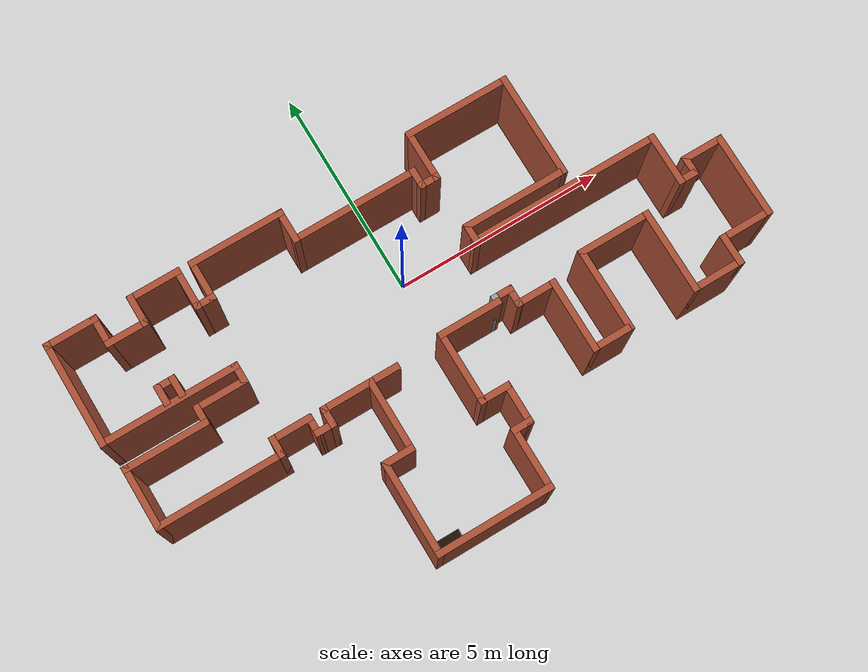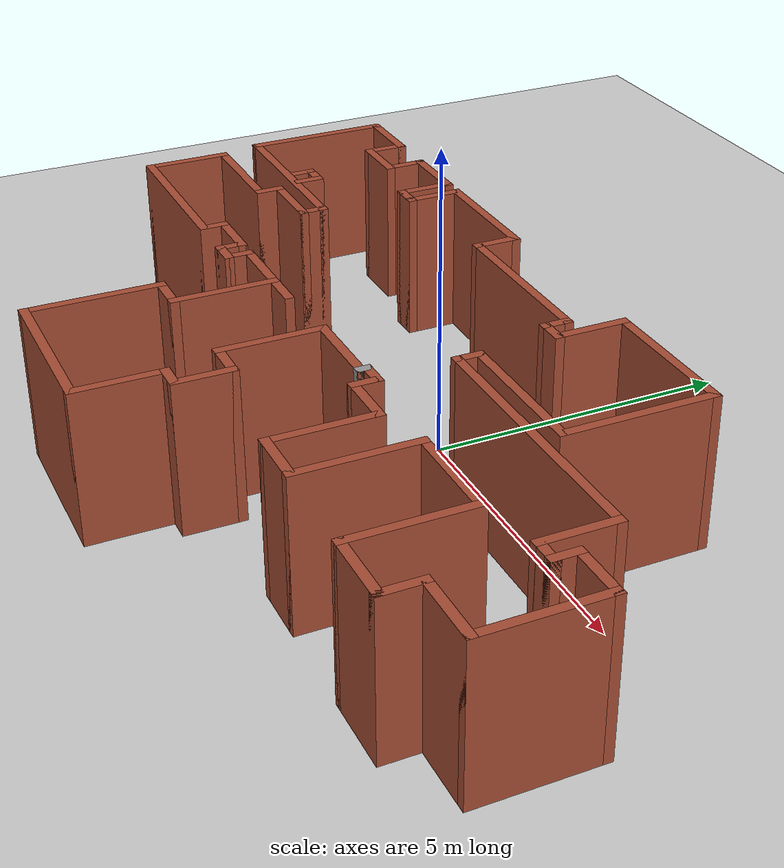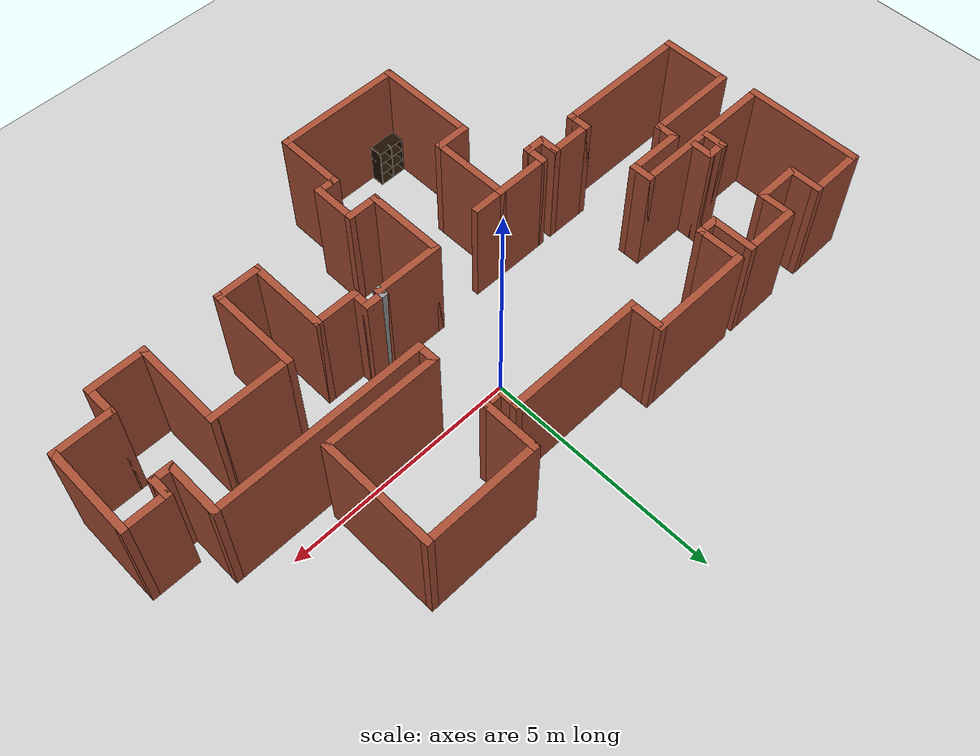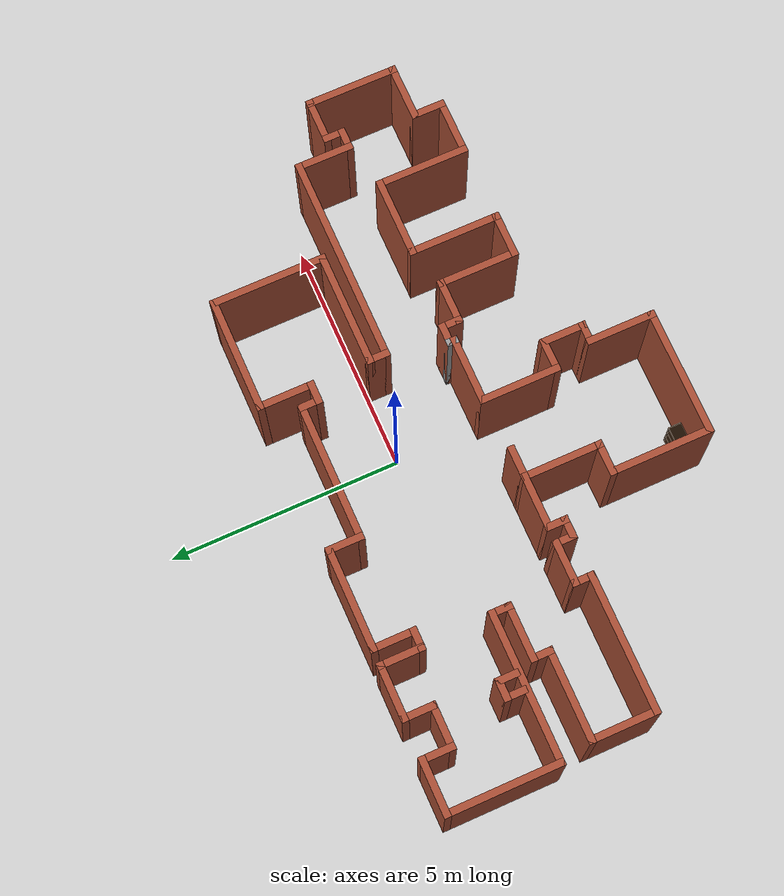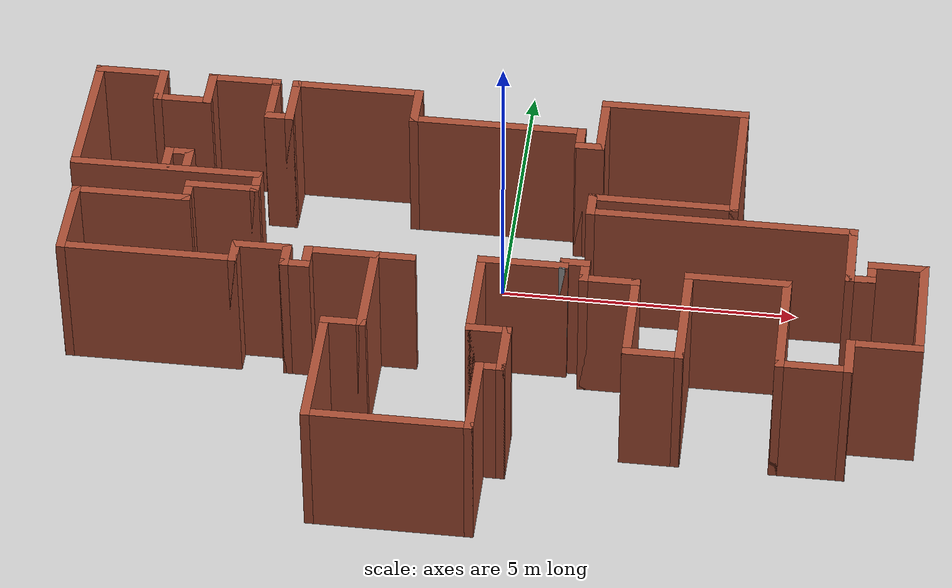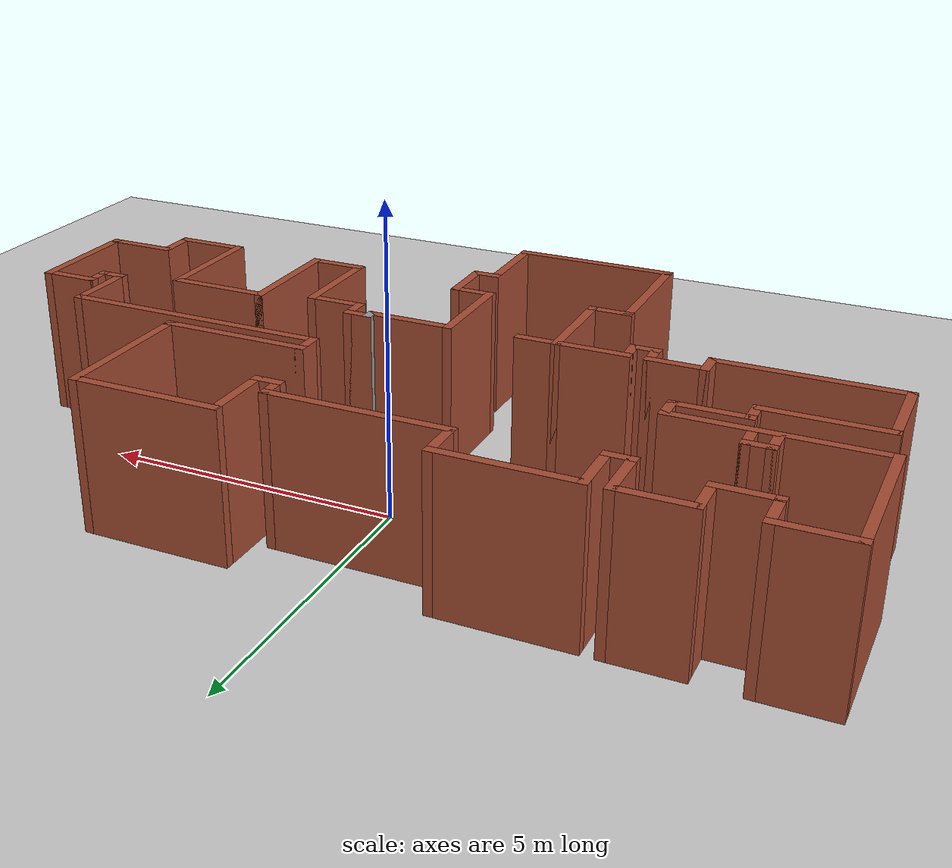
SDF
<sdf version="1.6">
 <world name="default">
  <model name="ground_plane">
   <static>1</static>
   <link name="link">
    <collision name="collision">
     <geometry><plane><normal>0 0 1</normal><size>100 100</size></plane></geometry>
     <surface>
      <contact><collide_bitmask>65535</collide_bitmask></contact>
      <friction><ode><mu>100</mu><mu2>50</mu2></ode></friction>
     </surface>
    </collision>
    <visual name="visual">
     <cast_shadows>0</cast_shadows>
     <geometry><plane><normal>0 0 1</normal><size>100 100</size></plane></geometry>
     <material>
      <script><uri>file://media/materials/scripts/gazebo.material</uri><name>Gazebo/Grey</name></script>
     </material>
    </visual>
   </link>
  </model>
  <model name="map_82">
   <pose>-0.062796 -1.68323 0 0 -0 0</pose>
   <link name="Wall_10">
    <collision name="Wall_10_Collision">
     <geometry><box><size>1.25 0.15 2.5</size></box></geometry>
     <pose>0 0 1.25 0 -0 0</pose>
    </collision>
    <visual name="Wall_10_Visual">
     <pose>0 0 1.25 0 -0 0</pose>
     <geometry><box><size>1.25 0.15 2.5</size></box></geometry>
     <material>
      <script><uri>file://media/materials/scripts/gazebo.material</uri><name>Gazebo/Bricks</name></script>
      <ambient>1 1 1 1</ambient>
     </material>
     <meta><layer>0</layer></meta>
    </visual>
    <pose>-4.625 3.825 0 0 -0 3.14159</pose>
   </link>
   <link name="Wall_11">
    <collision name="Wall_11_Collision">
     <geometry><box><size>0.75 0.15 2.5</size></box></geometry>
     <pose>0 0 1.25 0 -0 0</pose>
    </collision>
    <visual name="Wall_11_Visual">
     <pose>0 0 1.25 0 -0 0</pose>
     <geometry><box><size>0.75 0.15 2.5</size></box></geometry>
     <material>
      <script><uri>file://media/materials/scripts/gazebo.material</uri><name>Gazebo/Bricks</name></script>
      <ambient>1 1 1 1</ambient>
     </material>
     <meta><layer>0</layer></meta>
    </visual>
    <pose>-5.175 3.525 0 0 -0 -1.5708</pose>
   </link>
   <link name="Wall_12">
    <collision name="Wall_12_Collision">
     <geometry><box><size>1 0.15 2.5</size></box></geometry>
     <pose>0 0 1.25 0 -0 0</pose>
    </collision>
    <visual name="Wall_12_Visual">
     <pose>0 0 1.25 0 -0 0</pose>
     <geometry><box><size>1 0.15 2.5</size></box></geometry>
     <material>
      <script><uri>file://media/materials/scripts/gazebo.material</uri><name>Gazebo/Bricks</name></script>
      <ambient>1 1 1 1</ambient>
     </material>
     <meta><layer>0</layer></meta>
    </visual>
    <pose>-5.6 3.225 0 0 -0 3.14159</pose>
   </link>
   <link name="Wall_13">
    <collision name="Wall_13_Collision">
     <geometry><box><size>0.75 0.15 2.5</size></box></geometry>
     <pose>0 0 1.25 0 -0 0</pose>
    </collision>
    <visual name="Wall_13_Visual">
     <pose>0 0 1.25 0 -0 0</pose>
     <geometry><box><size>0.75 0.15 2.5</size></box></geometry>
     <material>
      <script><uri>file://media/materials/scripts/gazebo.material</uri><name>Gazebo/Bricks</name></script>
      <ambient>1 1 1 1</ambient>
     </material>
     <meta><layer>0</layer></meta>
    </visual>
    <pose>-6.025 3.525 0 0 -0 1.5708</pose>
   </link>
   <link name="Wall_14">
    <collision name="Wall_14_Collision">
     <geometry><box><size>1.25 0.15 2.5</size></box></geometry>
     <pose>0 0 1.25 0 -0 0</pose>
    </collision>
    <visual name="Wall_14_Visual">
     <pose>0 0 1.25 0 -0 0</pose>
     <geometry><box><size>1.25 0.15 2.5</size></box></geometry>
     <material>
      <script><uri>file://media/materials/scripts/gazebo.material</uri><name>Gazebo/Bricks</name></script>
      <ambient>1 1 1 1</ambient>
     </material>
     <meta><layer>0</layer></meta>
    </visual>
    <pose>-6.575 3.825 0 0 -0 3.14159</pose>
   </link>
   <link name="Wall_17">
    <collision name="Wall_17_Collision">
     <geometry><box><size>2.5 0.15 2.5</size></box></geometry>
     <pose>0 0 1.25 0 -0 0</pose>
    </collision>
    <visual name="Wall_17_Visual">
     <pose>0 0 1.25 0 -0 0</pose>
     <geometry><box><size>2.5 0.15 2.5</size></box></geometry>
     <material>
      <script><uri>file://media/materials/scripts/gazebo.material</uri><name>Gazebo/Bricks</name></script>
      <ambient>1 1 1 1</ambient>
     </material>
     <meta><layer>0</layer></meta>
    </visual>
    <pose>-7.125 2.65 0 0 -0 -1.5708</pose>
   </link>
   <link name="Wall_18">
    <collision name="Wall_18_Collision">
     <geometry><box><size>3.25 0.15 2.5</size></box></geometry>
     <pose>0 0 1.25 0 -0 0</pose>
    </collision>
    <visual name="Wall_18_Visual">
     <pose>0 0 1.25 0 -0 0</pose>
     <geometry><box><size>3.25 0.15 2.5</size></box></geometry>
     <material>
      <script><uri>file://media/materials/scripts/gazebo.material</uri><name>Gazebo/Bricks</name></script>
      <ambient>1 1 1 1</ambient>
     </material>
     <meta><layer>0</layer></meta>
    </visual>
    <pose>-5.575 1.475 0 0 -0 0</pose>
   </link>
   <link name="Wall_19">
    <collision name="Wall_19_Collision">
     <geometry><box><size>0.5 0.15 2.5</size></box></geometry>
     <pose>0 0 1.25 0 -0 0</pose>
    </collision>
    <visual name="Wall_19_Visual">
     <pose>0 0 1.25 0 -0 0</pose>
     <geometry><box><size>0.5 0.15 2.5</size></box></geometry>
     <material>
      <script><uri>file://media/materials/scripts/gazebo.material</uri><name>Gazebo/Bricks</name></script>
      <ambient>1 1 1 1</ambient>
     </material>
     <meta><layer>0</layer></meta>
    </visual>
    <pose>-4.025 1.3 0 0 -0 -1.5708</pose>
   </link>
   <link name="Wall_2">
    <collision name="Wall_2_Collision">
     <geometry><box><size>2.25 0.15 2.5</size></box></geometry>
     <pose>0 0 1.25 0 -0 0</pose>
    </collision>
    <visual name="Wall_2_Visual">
     <pose>0 0 1.25 0 -0 0</pose>
     <geometry><box><size>2.25 0.15 2.5</size></box></geometry>
     <material>
      <script><uri>file://media/materials/scripts/gazebo.material</uri><name>Gazebo/Bricks</name></script>
      <ambient>1 1 1 1</ambient>
     </material>
     <meta><layer>0</layer></meta>
    </visual>
    <pose>-2.675 3.825 0 0 -0 3.14159</pose>
   </link>
   <link name="Wall_23">
    <collision name="Wall_23_Collision">
     <geometry><box><size>1.25 0.15 2.5</size></box></geometry>
     <pose>0 0 1.25 0 -0 0</pose>
    </collision>
    <visual name="Wall_23_Visual">
     <pose>0 0 1.25 0 -0 0</pose>
     <geometry><box><size>1.25 0.15 2.5</size></box></geometry>
     <material>
      <script><uri>file://media/materials/scripts/gazebo.material</uri><name>Gazebo/Bricks</name></script>
      <ambient>1 1 1 1</ambient>
     </material>
     <meta><layer>0</layer></meta>
    </visual>
    <pose>-4.575 1.125 0 0 -0 3.14159</pose>
   </link>
   <link name="Wall_24">
    <collision name="Wall_24_Collision">
     <geometry><box><size>0.5 0.15 2.5</size></box></geometry>
     <pose>0 0 1.25 0 -0 0</pose>
    </collision>
    <visual name="Wall_24_Visual">
     <pose>0 0 1.25 0 -0 0</pose>
     <geometry><box><size>0.5 0.15 2.5</size></box></geometry>
     <material>
      <script><uri>file://media/materials/scripts/gazebo.material</uri><name>Gazebo/Bricks</name></script>
      <ambient>1 1 1 1</ambient>
     </material>
     <meta><layer>0</layer></meta>
    </visual>
    <pose>-5.125 0.95 0 0 -0 -1.5708</pose>
   </link>
   <link name="Wall_25">
    <collision name="Wall_25_Collision">
     <geometry><box><size>2 0.15 2.5</size></box></geometry>
     <pose>0 0 1.25 0 -0 0</pose>
    </collision>
    <visual name="Wall_25_Visual">
     <pose>0 0 1.25 0 -0 0</pose>
     <geometry><box><size>2 0.15 2.5</size></box></geometry>
     <material>
      <script><uri>file://media/materials/scripts/gazebo.material</uri><name>Gazebo/Bricks</name></script>
      <ambient>1 1 1 1</ambient>
     </material>
     <meta><layer>0</layer></meta>
    </visual>
    <pose>-6.05 0.775 0 0 -0 3.14159</pose>
   </link>
   <link name="Wall_26">
    <collision name="Wall_26_Collision">
     <geometry><box><size>1.5 0.15 2.5</size></box></geometry>
     <pose>0 0 1.25 0 -0 0</pose>
    </collision>
    <visual name="Wall_26_Visual">
     <pose>0 0 1.25 0 -0 0</pose>
     <geometry><box><size>1.5 0.15 2.5</size></box></geometry>
     <material>
      <script><uri>file://media/materials/scripts/gazebo.material</uri><name>Gazebo/Bricks</name></script>
      <ambient>1 1 1 1</ambient>
     </material>
     <meta><layer>0</layer></meta>
    </visual>
    <pose>-6.975 0.1 0 0 -0 -1.5708</pose>
   </link>
   <link name="Wall_27">
    <collision name="Wall_27_Collision">
     <geometry><box><size>3 0.15 2.5</size></box></geometry>
     <pose>0 0 1.25 0 -0 0</pose>
    </collision>
    <visual name="Wall_27_Visual">
     <pose>0 0 1.25 0 -0 0</pose>
     <geometry><box><size>3 0.15 2.5</size></box></geometry>
     <material>
      <script><uri>file://media/materials/scripts/gazebo.material</uri><name>Gazebo/Bricks</name></script>
      <ambient>1 1 1 1</ambient>
     </material>
     <meta><layer>0</layer></meta>
    </visual>
    <pose>-5.55 -0.575 0 0 -0 0</pose>
   </link>
   <link name="Wall_28">
    <collision name="Wall_28_Collision">
     <geometry><box><size>0.5 0.15 2.5</size></box></geometry>
     <pose>0 0 1.25 0 -0 0</pose>
    </collision>
    <visual name="Wall_28_Visual">
     <pose>0 0 1.25 0 -0 0</pose>
     <geometry><box><size>0.5 0.15 2.5</size></box></geometry>
     <material>
      <script><uri>file://media/materials/scripts/gazebo.material</uri><name>Gazebo/Bricks</name></script>
      <ambient>1 1 1 1</ambient>
     </material>
     <meta><layer>0</layer></meta>
    </visual>
    <pose>-4.125 -0.4 0 0 -0 1.5708</pose>
   </link>
   <link name="Wall_29">
    <collision name="Wall_29_Collision">
     <geometry><box><size>1 0.15 2.5</size></box></geometry>
     <pose>0 0 1.25 0 -0 0</pose>
    </collision>
    <visual name="Wall_29_Visual">
     <pose>0 0 1.25 0 -0 0</pose>
     <geometry><box><size>1 0.15 2.5</size></box></geometry>
     <material>
      <script><uri>file://media/materials/scripts/gazebo.material</uri><name>Gazebo/Bricks</name></script>
      <ambient>1 1 1 1</ambient>
     </material>
     <meta><layer>0</layer></meta>
    </visual>
    <pose>-3.7 -0.225 0 0 -0 0</pose>
   </link>
   <link name="Wall_30">
    <collision name="Wall_30_Collision">
     <geometry><box><size>0.5 0.15 2.5</size></box></geometry>
     <pose>0 0 1.25 0 -0 0</pose>
    </collision>
    <visual name="Wall_30_Visual">
     <pose>0 0 1.25 0 -0 0</pose>
     <geometry><box><size>0.5 0.15 2.5</size></box></geometry>
     <material>
      <script><uri>file://media/materials/scripts/gazebo.material</uri><name>Gazebo/Bricks</name></script>
      <ambient>1 1 1 1</ambient>
     </material>
     <meta><layer>0</layer></meta>
    </visual>
    <pose>-3.275 -0.4 0 0 -0 -1.5708</pose>
   </link>
   <link name="Wall_31">
    <collision name="Wall_31_Collision">
     <geometry><box><size>0.5 0.15 2.5</size></box></geometry>
     <pose>0 0 1.25 0 -0 0</pose>
    </collision>
    <visual name="Wall_31_Visual">
     <pose>0 0 1.25 0 -0 0</pose>
     <geometry><box><size>0.5 0.15 2.5</size></box></geometry>
     <material>
      <script><uri>file://media/materials/scripts/gazebo.material</uri><name>Gazebo/Bricks</name></script>
      <ambient>1 1 1 1</ambient>
     </material>
     <meta><layer>0</layer></meta>
    </visual>
    <pose>-3.1 -0.575 0 0 -0 0</pose>
   </link>
   <link name="Wall_32">
    <collision name="Wall_32_Collision">
     <geometry><box><size>0.5 0.15 2.5</size></box></geometry>
     <pose>0 0 1.25 0 -0 0</pose>
    </collision>
    <visual name="Wall_32_Visual">
     <pose>0 0 1.25 0 -0 0</pose>
     <geometry><box><size>0.5 0.15 2.5</size></box></geometry>
     <material>
      <script><uri>file://media/materials/scripts/gazebo.material</uri><name>Gazebo/Bricks</name></script>
      <ambient>1 1 1 1</ambient>
     </material>
     <meta><layer>0</layer></meta>
    </visual>
    <pose>-2.925 -0.4 0 0 -0 1.5708</pose>
   </link>
   <link name="Wall_33">
    <collision name="Wall_33_Collision">
     <geometry><box><size>1.25 0.15 2.5</size></box></geometry>
     <pose>0 0 1.25 0 -0 0</pose>
    </collision>
    <visual name="Wall_33_Visual">
     <pose>0 0 1.25 0 -0 0</pose>
     <geometry><box><size>1.25 0.15 2.5</size></box></geometry>
     <material>
      <script><uri>file://media/materials/scripts/gazebo.material</uri><name>Gazebo/Bricks</name></script>
      <ambient>1 1 1 1</ambient>
     </material>
     <meta><layer>0</layer></meta>
    </visual>
    <pose>-2.375 -0.225 0 0 -0 0</pose>
   </link>
   <link name="Wall_34">
    <collision name="Wall_34_Collision">
     <geometry><box><size>1.75 0.15 2.5</size></box></geometry>
     <pose>0 0 1.25 0 -0 0</pose>
    </collision>
    <visual name="Wall_34_Visual">
     <pose>0 0 1.25 0 -0 0</pose>
     <geometry><box><size>1.75 0.15 2.5</size></box></geometry>
     <material>
      <script><uri>file://media/materials/scripts/gazebo.material</uri><name>Gazebo/Bricks</name></script>
      <ambient>1 1 1 1</ambient>
     </material>
     <meta><layer>0</layer></meta>
    </visual>
    <pose>-1.825 -1.025 0 0 -0 -1.5708</pose>
   </link>
   <link name="Wall_35">
    <collision name="Wall_35_Collision">
     <geometry><box><size>0.75 0.15 2.5</size></box></geometry>
     <pose>0 0 1.25 0 -0 0</pose>
    </collision>
    <visual name="Wall_35_Visual">
     <pose>0 0 1.25 0 -0 0</pose>
     <geometry><box><size>0.75 0.15 2.5</size></box></geometry>
     <material>
      <script><uri>file://media/materials/scripts/gazebo.material</uri><name>Gazebo/Bricks</name></script>
      <ambient>1 1 1 1</ambient>
     </material>
     <meta><layer>0</layer></meta>
    </visual>
    <pose>-2.125 -1.825 0 0 -0 3.14159</pose>
   </link>
   <link name="Wall_36">
    <collision name="Wall_36_Collision">
     <geometry><box><size>2.25 0.15 2.5</size></box></geometry>
     <pose>0 0 1.25 0 -0 0</pose>
    </collision>
    <visual name="Wall_36_Visual">
     <pose>0 0 1.25 0 -0 0</pose>
     <geometry><box><size>2.25 0.15 2.5</size></box></geometry>
     <material>
      <script><uri>file://media/materials/scripts/gazebo.material</uri><name>Gazebo/Bricks</name></script>
      <ambient>1 1 1 1</ambient>
     </material>
     <meta><layer>0</layer></meta>
    </visual>
    <pose>-2.425 -2.875 0 0 -0 -1.5708</pose>
   </link>
   <link name="Wall_37">
    <collision name="Wall_37_Collision">
     <geometry><box><size>2.75 0.15 2.5</size></box></geometry>
     <pose>0 0 1.25 0 -0 0</pose>
    </collision>
    <visual name="Wall_37_Visual">
     <pose>0 0 1.25 0 -0 0</pose>
     <geometry><box><size>2.75 0.15 2.5</size></box></geometry>
     <material>
      <script><uri>file://media/materials/scripts/gazebo.material</uri><name>Gazebo/Bricks</name></script>
      <ambient>1 1 1 1</ambient>
     </material>
     <meta><layer>0</layer></meta>
    </visual>
    <pose>-1.125 -3.925 0 0 -0 0</pose>
   </link>
   <link name="Wall_38">
    <collision name="Wall_38_Collision">
     <geometry><box><size>1.5 0.15 2.5</size></box></geometry>
     <pose>0 0 1.25 0 -0 0</pose>
    </collision>
    <visual name="Wall_38_Visual">
     <pose>0 0 1.25 0 -0 0</pose>
     <geometry><box><size>1.5 0.15 2.5</size></box></geometry>
     <material>
      <script><uri>file://media/materials/scripts/gazebo.material</uri><name>Gazebo/Bricks</name></script>
      <ambient>1 1 1 1</ambient>
     </material>
     <meta><layer>0</layer></meta>
    </visual>
    <pose>0.175 -3.25 0 0 -0 1.5708</pose>
   </link>
   <link name="Wall_39">
    <collision name="Wall_39_Collision">
     <geometry><box><size>0.5 0.15 2.5</size></box></geometry>
     <pose>0 0 1.25 0 -0 0</pose>
    </collision>
    <visual name="Wall_39_Visual">
     <pose>0 0 1.25 0 -0 0</pose>
     <geometry><box><size>0.5 0.15 2.5</size></box></geometry>
     <material>
      <script><uri>file://media/materials/scripts/gazebo.material</uri><name>Gazebo/Bricks</name></script>
      <ambient>1 1 1 1</ambient>
     </material>
     <meta><layer>0</layer></meta>
    </visual>
    <pose>0.35 -2.575 0 0 -0 0</pose>
   </link>
   <link name="Wall_42">
    <collision name="Wall_42_Collision">
     <geometry><box><size>1 0.15 2.5</size></box></geometry>
     <pose>0 0 1.25 0 -0 0</pose>
    </collision>
    <visual name="Wall_42_Visual">
     <pose>0 0 1.25 0 -0 0</pose>
     <geometry><box><size>1 0.15 2.5</size></box></geometry>
     <material>
      <script><uri>file://media/materials/scripts/gazebo.material</uri><name>Gazebo/Bricks</name></script>
      <ambient>1 1 1 1</ambient>
     </material>
     <meta><layer>0</layer></meta>
    </visual>
    <pose>0.525 -2.15 0 0 -0 1.5708</pose>
   </link>
   <link name="Wall_43">
    <collision name="Wall_43_Collision">
     <geometry><box><size>0.75 0.15 2.5</size></box></geometry>
     <pose>0 0 1.25 0 -0 0</pose>
    </collision>
    <visual name="Wall_43_Visual">
     <pose>0 0 1.25 0 -0 0</pose>
     <geometry><box><size>0.75 0.15 2.5</size></box></geometry>
     <material>
      <script><uri>file://media/materials/scripts/gazebo.material</uri><name>Gazebo/Bricks</name></script>
      <ambient>1 1 1 1</ambient>
     </material>
     <meta><layer>0</layer></meta>
    </visual>
    <pose>0.225 -1.725 0 0 -0 3.14159</pose>
   </link>
   <link name="Wall_44">
    <collision name="Wall_44_Collision">
     <geometry><box><size>1.75 0.15 2.5</size></box></geometry>
     <pose>0 0 1.25 0 -0 0</pose>
    </collision>
    <visual name="Wall_44_Visual">
     <pose>0 0 1.25 0 -0 0</pose>
     <geometry><box><size>1.75 0.15 2.5</size></box></geometry>
     <material>
      <script><uri>file://media/materials/scripts/gazebo.material</uri><name>Gazebo/Bricks</name></script>
      <ambient>1 1 1 1</ambient>
     </material>
     <meta><layer>0</layer></meta>
    </visual>
    <pose>-0.075 -0.925 0 0 -0 1.5708</pose>
   </link>
   <link name="Wall_45">
    <collision name="Wall_45_Collision">
     <geometry><box><size>1.5 0.15 2.5</size></box></geometry>
     <pose>0 0 1.25 0 -0 0</pose>
    </collision>
    <visual name="Wall_45_Visual">
     <pose>0 0 1.25 0 -0 0</pose>
     <geometry><box><size>1.5 0.15 2.5</size></box></geometry>
     <material>
      <script><uri>file://media/materials/scripts/gazebo.material</uri><name>Gazebo/Bricks</name></script>
      <ambient>1 1 1 1</ambient>
     </material>
     <meta><layer>0</layer></meta>
    </visual>
    <pose>0.6 -0.125 0 0 -0 0</pose>
   </link>
   <link name="Wall_46">
    <collision name="Wall_46_Collision">
     <geometry><box><size>0.25 0.15 2.5</size></box></geometry>
     <pose>0 0 1.25 0 -0 0</pose>
    </collision>
    <visual name="Wall_46_Visual">
     <pose>0 0 1.25 0 -0 0</pose>
     <geometry><box><size>0.25 0.15 2.5</size></box></geometry>
     <material>
      <script><uri>file://media/materials/scripts/gazebo.material</uri><name>Gazebo/Grey</name></script>
      <ambient>1 1 1 1</ambient>
     </material>
     <meta><layer>0</layer></meta>
    </visual>
    <pose>1.275 -0.075 0 0 -0 1.5708</pose>
   </link>
   <link name="Wall_47">
    <collision name="Wall_47_Collision">
     <geometry><box><size>0.5 0.15 2.5</size></box></geometry>
     <pose>0 0 1.25 0 -0 0</pose>
    </collision>
    <visual name="Wall_47_Visual">
     <pose>0 0 1.25 0 -0 0</pose>
     <geometry><box><size>0.5 0.15 2.5</size></box></geometry>
     <material>
      <script><uri>file://media/materials/scripts/gazebo.material</uri><name>Gazebo/Bricks</name></script>
      <ambient>1 1 1 1</ambient>
     </material>
     <meta><layer>0</layer></meta>
    </visual>
    <pose>1.45 -0.025 0 0 -0 0</pose>
   </link>
   <link name="Wall_48">
    <collision name="Wall_48_Collision">
     <geometry><box><size>0.5 0.15 2.5</size></box></geometry>
     <pose>0 0 1.25 0 -0 0</pose>
    </collision>
    <visual name="Wall_48_Visual">
     <pose>0 0 1.25 0 -0 0</pose>
     <geometry><box><size>0.5 0.15 2.5</size></box></geometry>
     <material>
      <script><uri>file://media/materials/scripts/gazebo.material</uri><name>Gazebo/Bricks</name></script>
      <ambient>1 1 1 1</ambient>
     </material>
     <meta><layer>0</layer></meta>
    </visual>
    <pose>1.625 -0.2 0 0 -0 -1.5708</pose>
   </link>
   <link name="Wall_49">
    <collision name="Wall_49_Collision">
     <geometry><box><size>1 0.15 2.5</size></box></geometry>
     <pose>0 0 1.25 0 -0 0</pose>
    </collision>
    <visual name="Wall_49_Visual">
     <pose>0 0 1.25 0 -0 0</pose>
     <geometry><box><size>1 0.15 2.5</size></box></geometry>
     <material>
      <script><uri>file://media/materials/scripts/gazebo.material</uri><name>Gazebo/Bricks</name></script>
      <ambient>1 1 1 1</ambient>
     </material>
     <meta><layer>0</layer></meta>
    </visual>
    <pose>2.05 -0.375 0 0 -0 0</pose>
   </link>
   <link name="Wall_5">
    <collision name="Wall_5_Collision">
     <geometry><box><size>1 0.15 2.5</size></box></geometry>
     <pose>0 0 1.25 0 -0 0</pose>
    </collision>
    <visual name="Wall_5_Visual">
     <pose>0 0 1.25 0 -0 0</pose>
     <geometry><box><size>1 0.15 2.5</size></box></geometry>
     <material>
      <script><uri>file://media/materials/scripts/gazebo.material</uri><name>Gazebo/Bricks</name></script>
      <ambient>1 1 1 1</ambient>
     </material>
     <meta><layer>0</layer></meta>
    </visual>
    <pose>-3.725 3.4 0 0 -0 -1.5708</pose>
   </link>
   <link name="Wall_50">
    <collision name="Wall_50_Collision">
     <geometry><box><size>1.75 0.15 2.5</size></box></geometry>
     <pose>0 0 1.25 0 -0 0</pose>
    </collision>
    <visual name="Wall_50_Visual">
     <pose>0 0 1.25 0 -0 0</pose>
     <geometry><box><size>1.75 0.15 2.5</size></box></geometry>
     <material>
      <script><uri>file://media/materials/scripts/gazebo.material</uri><name>Gazebo/Bricks</name></script>
      <ambient>1 1 1 1</ambient>
     </material>
     <meta><layer>0</layer></meta>
    </visual>
    <pose>2.475 -1.175 0 0 -0 -1.5708</pose>
   </link>
   <link name="Wall_51">
    <collision name="Wall_51_Collision">
     <geometry><box><size>1 0.15 2.5</size></box></geometry>
     <pose>0 0 1.25 0 -0 0</pose>
    </collision>
    <visual name="Wall_51_Visual">
     <pose>0 0 1.25 0 -0 0</pose>
     <geometry><box><size>1 0.15 2.5</size></box></geometry>
     <material>
      <script><uri>file://media/materials/scripts/gazebo.material</uri><name>Gazebo/Bricks</name></script>
      <ambient>1 1 1 1</ambient>
     </material>
     <meta><layer>0</layer></meta>
    </visual>
    <pose>2.9 -1.975 0 0 -0 0</pose>
   </link>
   <link name="Wall_52">
    <collision name="Wall_52_Collision">
     <geometry><box><size>2 0.15 2.5</size></box></geometry>
     <pose>0 0 1.25 0 -0 0</pose>
    </collision>
    <visual name="Wall_52_Visual">
     <pose>0 0 1.25 0 -0 0</pose>
     <geometry><box><size>2 0.15 2.5</size></box></geometry>
     <material>
      <script><uri>file://media/materials/scripts/gazebo.material</uri><name>Gazebo/Bricks</name></script>
      <ambient>1 1 1 1</ambient>
     </material>
     <meta><layer>0</layer></meta>
    </visual>
    <pose>3.325 -1.05 0 0 -0 1.5708</pose>
   </link>
   <link name="Wall_53">
    <collision name="Wall_53_Collision">
     <geometry><box><size>1.75 0.15 2.5</size></box></geometry>
     <pose>0 0 1.25 0 -0 0</pose>
    </collision>
    <visual name="Wall_53_Visual">
     <pose>0 0 1.25 0 -0 0</pose>
     <geometry><box><size>1.75 0.15 2.5</size></box></geometry>
     <material>
      <script><uri>file://media/materials/scripts/gazebo.material</uri><name>Gazebo/Bricks</name></script>
      <ambient>1 1 1 1</ambient>
     </material>
     <meta><layer>0</layer></meta>
    </visual>
    <pose>4.125 -0.125 0 0 -0 0</pose>
   </link>
   <link name="Wall_54">
    <collision name="Wall_54_Collision">
     <geometry><box><size>2 0.15 2.5</size></box></geometry>
     <pose>0 0 1.25 0 -0 0</pose>
    </collision>
    <visual name="Wall_54_Visual">
     <pose>0 0 1.25 0 -0 0</pose>
     <geometry><box><size>2 0.15 2.5</size></box></geometry>
     <material>
      <script><uri>file://media/materials/scripts/gazebo.material</uri><name>Gazebo/Bricks</name></script>
      <ambient>1 1 1 1</ambient>
     </material>
     <meta><layer>0</layer></meta>
    </visual>
    <pose>4.925 -1.05 0 0 -0 -1.5708</pose>
   </link>
   <link name="Wall_55">
    <collision name="Wall_55_Collision">
     <geometry><box><size>1.25 0.15 2.5</size></box></geometry>
     <pose>0 0 1.25 0 -0 0</pose>
    </collision>
    <visual name="Wall_55_Visual">
     <pose>0 0 1.25 0 -0 0</pose>
     <geometry><box><size>1.25 0.15 2.5</size></box></geometry>
     <material>
      <script><uri>file://media/materials/scripts/gazebo.material</uri><name>Gazebo/Bricks</name></script>
      <ambient>1 1 1 1</ambient>
     </material>
     <meta><layer>0</layer></meta>
    </visual>
    <pose>5.475 -1.975 0 0 -0 0</pose>
   </link>
   <link name="Wall_56">
    <collision name="Wall_56_Collision">
     <geometry><box><size>0.75 0.15 2.5</size></box></geometry>
     <pose>0 0 1.25 0 -0 0</pose>
    </collision>
    <visual name="Wall_56_Visual">
     <pose>0 0 1.25 0 -0 0</pose>
     <geometry><box><size>0.75 0.15 2.5</size></box></geometry>
     <material>
      <script><uri>file://media/materials/scripts/gazebo.material</uri><name>Gazebo/Bricks</name></script>
      <ambient>1 1 1 1</ambient>
     </material>
     <meta><layer>0</layer></meta>
    </visual>
    <pose>6.025 -1.675 0 0 -0 1.5708</pose>
   </link>
   <link name="Wall_57">
    <collision name="Wall_57_Collision">
     <geometry><box><size>1.25 0.15 2.5</size></box></geometry>
     <pose>0 0 1.25 0 -0 0</pose>
    </collision>
    <visual name="Wall_57_Visual">
     <pose>0 0 1.25 0 -0 0</pose>
     <geometry><box><size>1.25 0.15 2.5</size></box></geometry>
     <material>
      <script><uri>file://media/materials/scripts/gazebo.material</uri><name>Gazebo/Bricks</name></script>
      <ambient>1 1 1 1</ambient>
     </material>
     <meta><layer>0</layer></meta>
    </visual>
    <pose>6.575 -1.375 0 0 -0 0</pose>
   </link>
   <link name="Wall_58">
    <collision name="Wall_58_Collision">
     <geometry><box><size>2 0.15 2.5</size></box></geometry>
     <pose>0 0 1.25 0 -0 0</pose>
    </collision>
    <visual name="Wall_58_Visual">
     <pose>0 0 1.25 0 -0 0</pose>
     <geometry><box><size>2 0.15 2.5</size></box></geometry>
     <material>
      <script><uri>file://media/materials/scripts/gazebo.material</uri><name>Gazebo/Bricks</name></script>
      <ambient>1 1 1 1</ambient>
     </material>
     <meta><layer>0</layer></meta>
    </visual>
    <pose>7.125 -0.45 0 0 -0 1.5708</pose>
   </link>
   <link name="Wall_59">
    <collision name="Wall_59_Collision">
     <geometry><box><size>1 0.15 2.5</size></box></geometry>
     <pose>0 0 1.25 0 -0 0</pose>
    </collision>
    <visual name="Wall_59_Visual">
     <pose>0 0 1.25 0 -0 0</pose>
     <geometry><box><size>1 0.15 2.5</size></box></geometry>
     <material>
      <script><uri>file://media/materials/scripts/gazebo.material</uri><name>Gazebo/Bricks</name></script>
      <ambient>1 1 1 1</ambient>
     </material>
     <meta><layer>0</layer></meta>
    </visual>
    <pose>6.7 0.475 0 0 -0 3.14159</pose>
   </link>
   <link name="Wall_60">
    <collision name="Wall_60_Collision">
     <geometry><box><size>0.5 0.15 2.5</size></box></geometry>
     <pose>0 0 1.25 0 -0 0</pose>
    </collision>
    <visual name="Wall_60_Visual">
     <pose>0 0 1.25 0 -0 0</pose>
     <geometry><box><size>0.5 0.15 2.5</size></box></geometry>
     <material>
      <script><uri>file://media/materials/scripts/gazebo.material</uri><name>Gazebo/Bricks</name></script>
      <ambient>1 1 1 1</ambient>
     </material>
     <meta><layer>0</layer></meta>
    </visual>
    <pose>6.275 0.3 0 0 -0 -1.5708</pose>
   </link>
   <link name="Wall_61">
    <collision name="Wall_61_Collision">
     <geometry><box><size>0.5 0.15 2.5</size></box></geometry>
     <pose>0 0 1.25 0 -0 0</pose>
    </collision>
    <visual name="Wall_61_Visual">
     <pose>0 0 1.25 0 -0 0</pose>
     <geometry><box><size>0.5 0.15 2.5</size></box></geometry>
     <material>
      <script><uri>file://media/materials/scripts/gazebo.material</uri><name>Gazebo/Bricks</name></script>
      <ambient>1 1 1 1</ambient>
     </material>
     <meta><layer>0</layer></meta>
    </visual>
    <pose>6.1 0.125 0 0 -0 3.14159</pose>
   </link>
   <link name="Wall_65">
    <collision name="Wall_65_Collision">
     <geometry><box><size>1.25 0.15 2.5</size></box></geometry>
     <pose>0 0 1.25 0 -0 0</pose>
    </collision>
    <visual name="Wall_65_Visual">
     <pose>0 0 1.25 0 -0 0</pose>
     <geometry><box><size>1.25 0.15 2.5</size></box></geometry>
     <material>
      <script><uri>file://media/materials/scripts/gazebo.material</uri><name>Gazebo/Bricks</name></script>
      <ambient>1 1 1 1</ambient>
     </material>
     <meta><layer>0</layer></meta>
    </visual>
    <pose>5.925 0.675 0 0 -0 1.5708</pose>
   </link>
   <link name="Wall_66">
    <collision name="Wall_66_Collision">
     <geometry><box><size>4.5 0.15 2.5</size></box></geometry>
     <pose>0 0 1.25 0 -0 0</pose>
    </collision>
    <visual name="Wall_66_Visual">
     <pose>0 0 1.25 0 -0 0</pose>
     <geometry><box><size>4.5 0.15 2.5</size></box></geometry>
     <material>
      <script><uri>file://media/materials/scripts/gazebo.material</uri><name>Gazebo/Bricks</name></script>
      <ambient>1 1 1 1</ambient>
     </material>
     <meta><layer>0</layer></meta>
    </visual>
    <pose>3.75 1.225 0 0 -0 3.14159</pose>
   </link>
   <link name="Wall_67">
    <collision name="Wall_67_Collision">
     <geometry><box><size>0.5 0.15 2.5</size></box></geometry>
     <pose>0 0 1.25 0 -0 0</pose>
    </collision>
    <visual name="Wall_67_Visual">
     <pose>0 0 1.25 0 -0 0</pose>
     <geometry><box><size>0.5 0.15 2.5</size></box></geometry>
     <material>
      <script><uri>file://media/materials/scripts/gazebo.material</uri><name>Gazebo/Bricks</name></script>
      <ambient>1 1 1 1</ambient>
     </material>
     <meta><layer>0</layer></meta>
    </visual>
    <pose>1.575 1.4 0 0 -0 1.5708</pose>
   </link>
   <link name="Wall_68">
    <collision name="Wall_68_Collision">
     <geometry><box><size>2.5 0.15 2.5</size></box></geometry>
     <pose>0 0 1.25 0 -0 0</pose>
    </collision>
    <visual name="Wall_68_Visual">
     <pose>0 0 1.25 0 -0 0</pose>
     <geometry><box><size>2.5 0.15 2.5</size></box></geometry>
     <material>
      <script><uri>file://media/materials/scripts/gazebo.material</uri><name>Gazebo/Bricks</name></script>
      <ambient>1 1 1 1</ambient>
     </material>
     <meta><layer>0</layer></meta>
    </visual>
    <pose>2.75 1.575 0 0 -0 0</pose>
   </link>
   <link name="Wall_69">
    <collision name="Wall_69_Collision">
     <geometry><box><size>2.5 0.15 2.5</size></box></geometry>
     <pose>0 0 1.25 0 -0 0</pose>
    </collision>
    <visual name="Wall_69_Visual">
     <pose>0 0 1.25 0 -0 0</pose>
     <geometry><box><size>2.5 0.15 2.5</size></box></geometry>
     <material>
      <script><uri>file://media/materials/scripts/gazebo.material</uri><name>Gazebo/Bricks</name></script>
      <ambient>1 1 1 1</ambient>
     </material>
     <meta><layer>0</layer></meta>
    </visual>
    <pose>3.925 2.75 0 0 -0 1.5708</pose>
   </link>
   <link name="Wall_70">
    <collision name="Wall_70_Collision">
     <geometry><box><size>2.5 0.15 2.5</size></box></geometry>
     <pose>0 0 1.25 0 -0 0</pose>
    </collision>
    <visual name="Wall_70_Visual">
     <pose>0 0 1.25 0 -0 0</pose>
     <geometry><box><size>2.5 0.15 2.5</size></box></geometry>
     <material>
      <script><uri>file://media/materials/scripts/gazebo.material</uri><name>Gazebo/Bricks</name></script>
      <ambient>1 1 1 1</ambient>
     </material>
     <meta><layer>0</layer></meta>
    </visual>
    <pose>2.75 3.925 0 0 -0 3.14159</pose>
   </link>
   <link name="Wall_71">
    <collision name="Wall_71_Collision">
     <geometry><box><size>1.25 0.15 2.5</size></box></geometry>
     <pose>0 0 1.25 0 -0 0</pose>
    </collision>
    <visual name="Wall_71_Visual">
     <pose>0 0 1.25 0 -0 0</pose>
     <geometry><box><size>1.25 0.15 2.5</size></box></geometry>
     <material>
      <script><uri>file://media/materials/scripts/gazebo.material</uri><name>Gazebo/Bricks</name></script>
      <ambient>1 1 1 1</ambient>
     </material>
     <meta><layer>0</layer></meta>
    </visual>
    <pose>1.575 3.375 0 0 -0 -1.5708</pose>
   </link>
   <link name="Wall_72">
    <collision name="Wall_72_Collision">
     <geometry><box><size>0.5 0.15 2.5</size></box></geometry>
     <pose>0 0 1.25 0 -0 0</pose>
    </collision>
    <visual name="Wall_72_Visual">
     <pose>0 0 1.25 0 -0 0</pose>
     <geometry><box><size>0.5 0.15 2.5</size></box></geometry>
     <material>
      <script><uri>file://media/materials/scripts/gazebo.material</uri><name>Gazebo/Bricks</name></script>
      <ambient>1 1 1 1</ambient>
     </material>
     <meta><layer>0</layer></meta>
    </visual>
    <pose>1.4 2.825 0 0 -0 3.14159</pose>
   </link>
   <link name="Wall_73">
    <collision name="Wall_73_Collision">
     <geometry><box><size>0.5 0.15 2.5</size></box></geometry>
     <pose>0 0 1.25 0 -0 0</pose>
    </collision>
    <visual name="Wall_73_Visual">
     <pose>0 0 1.25 0 -0 0</pose>
     <geometry><box><size>0.5 0.15 2.5</size></box></geometry>
     <material>
      <script><uri>file://media/materials/scripts/gazebo.material</uri><name>Gazebo/Bricks</name></script>
      <ambient>1 1 1 1</ambient>
     </material>
     <meta><layer>0</layer></meta>
    </visual>
    <pose>1.225 3 0 0 -0 1.5708</pose>
   </link>
   <link name="Wall_78">
    <collision name="Wall_78_Collision">
     <geometry><box><size>3 0.15 2.5</size></box></geometry>
     <pose>0 0 1.25 0 -0 0</pose>
    </collision>
    <visual name="Wall_78_Visual">
     <pose>0 0 1.25 0 -0 0</pose>
     <geometry><box><size>3 0.15 2.5</size></box></geometry>
     <material>
      <script><uri>file://media/materials/scripts/gazebo.material</uri><name>Gazebo/Bricks</name></script>
      <ambient>1 1 1 1</ambient>
     </material>
     <meta><layer>0</layer></meta>
    </visual>
    <pose>-0.2 3.175 0 0 -0 3.14159</pose>
   </link>
   <link name="Wall_79">
    <collision name="Wall_79_Collision">
     <geometry><box><size>0.8 0.15 2.5</size></box></geometry>
     <pose>0 0 1.25 0 -0 0</pose>
    </collision>
    <visual name="Wall_79_Visual">
     <pose>0 0 1.25 0 -0 0</pose>
     <geometry><box><size>0.8 0.15 2.5</size></box></geometry>
     <material>
      <script><uri>file://media/materials/scripts/gazebo.material</uri><name>Gazebo/Bricks</name></script>
      <ambient>1 1 1 1</ambient>
     </material>
     <meta><layer>0</layer></meta>
    </visual>
    <pose>-1.625 3.5 0 0 -0 1.5708</pose>
   </link>
   <link name="Wall_8">
    <collision name="Wall_8_Collision">
     <geometry><box><size>0.5 0.15 2.5</size></box></geometry>
     <pose>0 0 1.25 0 -0 0</pose>
    </collision>
    <visual name="Wall_8_Visual">
     <pose>0 0 1.25 0 -0 0</pose>
     <geometry><box><size>0.5 0.15 2.5</size></box></geometry>
     <material>
      <script><uri>file://media/materials/scripts/gazebo.material</uri><name>Gazebo/Bricks</name></script>
      <ambient>1 1 1 1</ambient>
     </material>
     <meta><layer>0</layer></meta>
    </visual>
    <pose>-3.9 2.975 0 0 -0 3.14159</pose>
   </link>
   <link name="Wall_81">
    <collision name="Wall_81_Collision">
     <geometry><box><size>0.75 0.15 2.5</size></box></geometry>
     <pose>0 0 1.25 0 -0 0</pose>
    </collision>
    <visual name="Wall_81_Visual">
     <pose>0 0 1.25 0 -0 0</pose>
     <geometry><box><size>0.75 0.15 2.5</size></box></geometry>
     <material>
      <script><uri>file://media/materials/scripts/gazebo.material</uri><name>Gazebo/Bricks</name></script>
      <ambient>1 1 1 1</ambient>
     </material>
     <meta><layer>0</layer></meta>
    </visual>
    <pose>-1.525 -0.225 0 0 -0 0</pose>
   </link>
   <link name="Wall_85">
    <collision name="Wall_85_Collision">
     <geometry><box><size>0.5 0.15 2.5</size></box></geometry>
     <pose>0 0 1.25 0 -0 0</pose>
    </collision>
    <visual name="Wall_85_Visual">
     <pose>0 0 1.25 0 -0 0</pose>
     <geometry><box><size>0.5 0.15 2.5</size></box></geometry>
     <material>
      <script><uri>file://media/materials/scripts/gazebo.material</uri><name>Gazebo/Bricks</name></script>
      <ambient>1 1 1 1</ambient>
     </material>
     <meta><layer>0</layer></meta>
    </visual>
    <pose>-5.60346 1.72478 0 0 -0 1.5708</pose>
   </link>
   <link name="Wall_86">
    <collision name="Wall_86_Collision">
     <geometry><box><size>0.5 0.15 2.5</size></box></geometry>
     <pose>0 0 1.25 0 -0 0</pose>
    </collision>
    <visual name="Wall_86_Visual">
     <pose>0 0 1.25 0 -0 0</pose>
     <geometry><box><size>0.5 0.15 2.5</size></box></geometry>
     <material>
      <script><uri>file://media/materials/scripts/gazebo.material</uri><name>Gazebo/Bricks</name></script>
      <ambient>1 1 1 1</ambient>
     </material>
     <meta><layer>0</layer></meta>
    </visual>
    <pose>-5.42847 1.89978 0 0 -0 0</pose>
   </link>
   <link name="Wall_87">
    <collision name="Wall_87_Collision">
     <geometry><box><size>0.5 0.15 2.5</size></box></geometry>
     <pose>0 0 1.25 0 -0 0</pose>
    </collision>
    <visual name="Wall_87_Visual">
     <pose>0 0 1.25 0 -0 0</pose>
     <geometry><box><size>0.5 0.15 2.5</size></box></geometry>
     <material>
      <script><uri>file://media/materials/scripts/gazebo.material</uri><name>Gazebo/Bricks</name></script>
      <ambient>1 1 1 1</ambient>
     </material>
     <meta><layer>0</layer></meta>
    </visual>
    <pose>-5.25347 1.72478 0 0 -0 -1.5708</pose>
   </link>
   <link name="Wall_9">
    <collision name="Wall_9_Collision">
     <geometry><box><size>1 0.15 2.5</size></box></geometry>
     <pose>0 0 1.25 0 -0 0</pose>
    </collision>
    <visual name="Wall_9_Visual">
     <pose>0 0 1.25 0 -0 0</pose>
     <geometry><box><size>1 0.15 2.5</size></box></geometry>
     <material>
      <script><uri>file://media/materials/scripts/gazebo.material</uri><name>Gazebo/Bricks</name></script>
      <ambient>1 1 1 1</ambient>
     </material>
     <meta><layer>0</layer></meta>
    </visual>
    <pose>-4.075 3.4 0 0 -0 1.5708</pose>
   </link>
   <static>1</static>
  </model>
  <model name="6_Cube_StorageE">
   <link name="Wall_0">
    <pose>0 0 0.01 0 -0 0</pose>
    <inertial>
     <mass>1.6201</mass>
     <inertia><ixx>0.0119</ixx><iyy>0.0631</iyy><izz>0.0513</izz><ixy>0</ixy><ixz>0</ixz><iyz>0</iyz></inertia>
    </inertial>
    <collision name="Wall_0_Collision"><geometry><box><size>0.616 0.296 0.02</size></box></geometry></collision>
    <visual name="Wall_0_Visual">
     <geometry><box><size>0.616 0.296 0.02</size></box></geometry>
     <material>
      <script><uri>file://media/materials/scripts/gazebo.material</uri><name>Gazebo/Grey</name></script>
      <ambient>0.105882 0.0509804 0 1</ambient>
     </material>
    </visual>
   </link>
   <joint name="0_2" type="fixed">
    <pose>-0.308 0 0 0 -0 0</pose>
    <parent>Wall_2</parent>
    <child>Wall_0</child>
    <axis>
     <xyz>1 0 0</xyz>
     <use_parent_model_frame>0</use_parent_model_frame>
     <limit><lower>-1e+16</lower><upper>1e+16</upper></limit>
    </axis>
   </joint>
   <joint name="0_12" type="fixed">
    <parent>Wall_12</parent>
    <child>Wall_0</child>
    <axis>
     <xyz>0 0 1</xyz>
     <use_parent_model_frame>0</use_parent_model_frame>
     <limit><lower>-1e+16</lower><upper>1e+16</upper></limit>
    </axis>
   </joint>
   <joint name="0_4" type="fixed">
    <pose>0.308 0 0 0 -0 0</pose>
    <parent>Wall_4</parent>
    <child>Wall_0</child>
    <axis>
     <xyz>1 0 0</xyz>
     <use_parent_model_frame>0</use_parent_model_frame>
     <limit><lower>-1e+16</lower><upper>1e+16</upper></limit>
    </axis>
   </joint>
   <link name="Wall_10">
    <pose>0 0 0.61 0 -0 0</pose>
    <inertial>
     <mass>1.6201</mass>
     <inertia><ixx>0.0119</ixx><iyy>0.0631</iyy><izz>0.0513</izz><ixy>0</ixy><ixz>0</ixz><iyz>0</iyz></inertia>
    </inertial>
    <collision name="Wall_10_Collision"><geometry><box><size>0.616 0.296 0.02</size></box></geometry></collision>
    <visual name="Wall_10_Visual">
     <geometry><box><size>0.616 0.296 0.02</size></box></geometry>
     <material>
      <script><uri>file://media/materials/scripts/gazebo.material</uri><name>Gazebo/Grey</name></script>
      <ambient>0.105882 0.0509804 0 1</ambient>
     </material>
    </visual>
   </link>
   <joint name="10_2" type="fixed">
    <pose>-0.308 0 0 0 -0 0</pose>
    <parent>Wall_2</parent>
    <child>Wall_10</child>
    <axis>
     <xyz>1 0 0</xyz>
     <use_parent_model_frame>0</use_parent_model_frame>
     <limit><lower>-1e+16</lower><upper>1e+16</upper></limit>
    </axis>
   </joint>
   <joint name="10_12" type="fixed">
    <parent>Wall_12</parent>
    <child>Wall_10</child>
    <axis>
     <xyz>0 0 1</xyz>
     <use_parent_model_frame>0</use_parent_model_frame>
     <limit><lower>-1e+16</lower><upper>1e+16</upper></limit>
    </axis>
   </joint>
   <joint name="10_4" type="fixed">
    <pose>0.308 0 0 0 -0 0</pose>
    <parent>Wall_4</parent>
    <child>Wall_10</child>
    <axis>
     <xyz>1 0 0</xyz>
     <use_parent_model_frame>0</use_parent_model_frame>
     <limit><lower>-1e+16</lower><upper>1e+16</upper></limit>
    </axis>
   </joint>
   <link name="Wall_12">
    <pose>0 0 0.4575 0 -0 0</pose>
    <inertial>
     <mass>2.4065</mass>
     <inertia><ixx>0.0177</ixx><iyy>0.1855</iyy><izz>0.168</izz><ixy>0</ixy><ixz>0</ixz><iyz>0</iyz></inertia>
    </inertial>
    <collision name="Wall_12_Collision"><geometry><box><size>0.02 0.296 0.915</size></box></geometry></collision>
    <visual name="Wall_12_Visual">
     <geometry><box><size>0.02 0.296 0.915</size></box></geometry>
     <material>
      <script><uri>file://media/materials/scripts/gazebo.material</uri><name>Gazebo/Grey</name></script>
      <ambient>0.105882 0.0509804 0 1</ambient>
     </material>
    </visual>
   </link>
   <link name="Wall_2">
    <pose>-0.298 0 0.4575 0 -0 0</pose>
    <inertial>
     <mass>2.4065</mass>
     <inertia><ixx>0.0177</ixx><iyy>0.1855</iyy><izz>0.168</izz><ixy>0</ixy><ixz>0</ixz><iyz>0</iyz></inertia>
    </inertial>
    <collision name="Wall_2_Collision"><geometry><box><size>0.02 0.296 0.915</size></box></geometry></collision>
    <visual name="Wall_2_Visual">
     <geometry><box><size>0.02 0.296 0.915</size></box></geometry>
     <material>
      <script><uri>file://media/materials/scripts/gazebo.material</uri><name>Gazebo/Grey</name></script>
      <ambient>0.105882 0.0509804 0 1</ambient>
     </material>
    </visual>
   </link>
   <link name="Wall_4">
    <pose>0.298 0 0.4575 0 -0 0</pose>
    <inertial>
     <mass>2.4065</mass>
     <inertia><ixx>0.0177</ixx><iyy>0.1855</iyy><izz>0.168</izz><ixy>0</ixy><ixz>0</ixz><iyz>0</iyz></inertia>
    </inertial>
    <collision name="Wall_4_Collision"><geometry><box><size>0.02 0.296 0.915</size></box></geometry></collision>
    <visual name="Wall_4_Visual">
     <geometry><box><size>0.02 0.296 0.915</size></box></geometry>
     <material>
      <script><uri>file://media/materials/scripts/gazebo.material</uri><name>Gazebo/Grey</name></script>
      <ambient>0.105882 0.0509804 0 1</ambient>
     </material>
    </visual>
   </link>
   <link name="Wall_6">
    <pose>0 0 0.905 0 -0 0</pose>
    <inertial>
     <mass>1.6201</mass>
     <inertia><ixx>0.0119</ixx><iyy>0.0631</iyy><izz>0.0513</izz><ixy>0</ixy><ixz>0</ixz><iyz>0</iyz></inertia>
    </inertial>
    <collision name="Wall_6_Collision"><geometry><box><size>0.616 0.296 0.02</size></box></geometry></collision>
    <visual name="Wall_6_Visual">
     <geometry><box><size>0.616 0.296 0.02</size></box></geometry>
     <material>
      <script><uri>file://media/materials/scripts/gazebo.material</uri><name>Gazebo/Grey</name></script>
      <ambient>0.105882 0.0509804 0 1</ambient>
     </material>
    </visual>
   </link>
   <joint name="6_2" type="fixed">
    <pose>-0.308 0 0 0 -0 0</pose>
    <parent>Wall_2</parent>
    <child>Wall_6</child>
    <axis>
     <xyz>2 0 0</xyz>
     <use_parent_model_frame>0</use_parent_model_frame>
     <limit><lower>-1e+16</lower><upper>1e+16</upper></limit>
    </axis>
   </joint>
   <joint name="6_12" type="fixed">
    <parent>Wall_12</parent>
    <child>Wall_6</child>
    <axis>
     <xyz>0 0 1</xyz>
     <use_parent_model_frame>0</use_parent_model_frame>
     <limit><lower>-1e+16</lower><upper>1e+16</upper></limit>
    </axis>
   </joint>
   <joint name="6_4" type="fixed">
    <pose>0.308 0 0 0 -0 0</pose>
    <parent>Wall_4</parent>
    <child>Wall_6</child>
    <axis>
     <xyz>1 0 0</xyz>
     <use_parent_model_frame>0</use_parent_model_frame>
     <limit><lower>-1e+16</lower><upper>1e+16</upper></limit>
    </axis>
   </joint>
   <link name="Wall_8">
    <pose>0 0 0.305 0 -0 0</pose>
    <inertial>
     <mass>1.6201</mass>
     <inertia><ixx>0.0119</ixx><iyy>0.0631</iyy><izz>0.0513</izz><ixy>0</ixy><ixz>0</ixz><iyz>0</iyz></inertia>
    </inertial>
    <collision name="Wall_8_Collision"><geometry><box><size>0.616 0.296 0.02</size></box></geometry></collision>
    <visual name="Wall_8_Visual">
     <geometry><box><size>0.616 0.296 0.02</size></box></geometry>
     <material>
      <script><uri>file://media/materials/scripts/gazebo.material</uri><name>Gazebo/Grey</name></script>
      <ambient>0.105882 0.0509804 0 1</ambient>
     </material>
    </visual>
   </link>
   <joint name="8_2" type="fixed">
    <pose>-0.308 0 0 0 -0 0</pose>
    <parent>Wall_2</parent>
    <child>Wall_8</child>
    <axis>
     <xyz>1 0 0</xyz>
     <use_parent_model_frame>0</use_parent_model_frame>
     <limit><lower>-1e+16</lower><upper>1e+16</upper></limit>
    </axis>
   </joint>
   <joint name="8_12" type="fixed">
    <parent>Wall_12</parent>
    <child>Wall_8</child>
    <axis>
     <xyz>0 0 1</xyz>
     <use_parent_model_frame>0</use_parent_model_frame>
     <limit><lower>-1e+16</lower><upper>1e+16</upper></limit>
    </axis>
   </joint>
   <joint name="8_4" type="fixed">
    <pose>0.308 0 0 0 -0 0</pose>
    <parent>Wall_4</parent>
    <child>Wall_8</child>
    <axis>
     <xyz>1 0 0</xyz>
     <use_parent_model_frame>0</use_parent_model_frame>
     <limit><lower>-1e+16</lower><upper>1e+16</upper></limit>
    </axis>
   </joint>
   <static>1</static>
   <pose>-2.09423 -5.40094 0 0 -0 0</pose>
  </model>
 </world>
</sdf>
